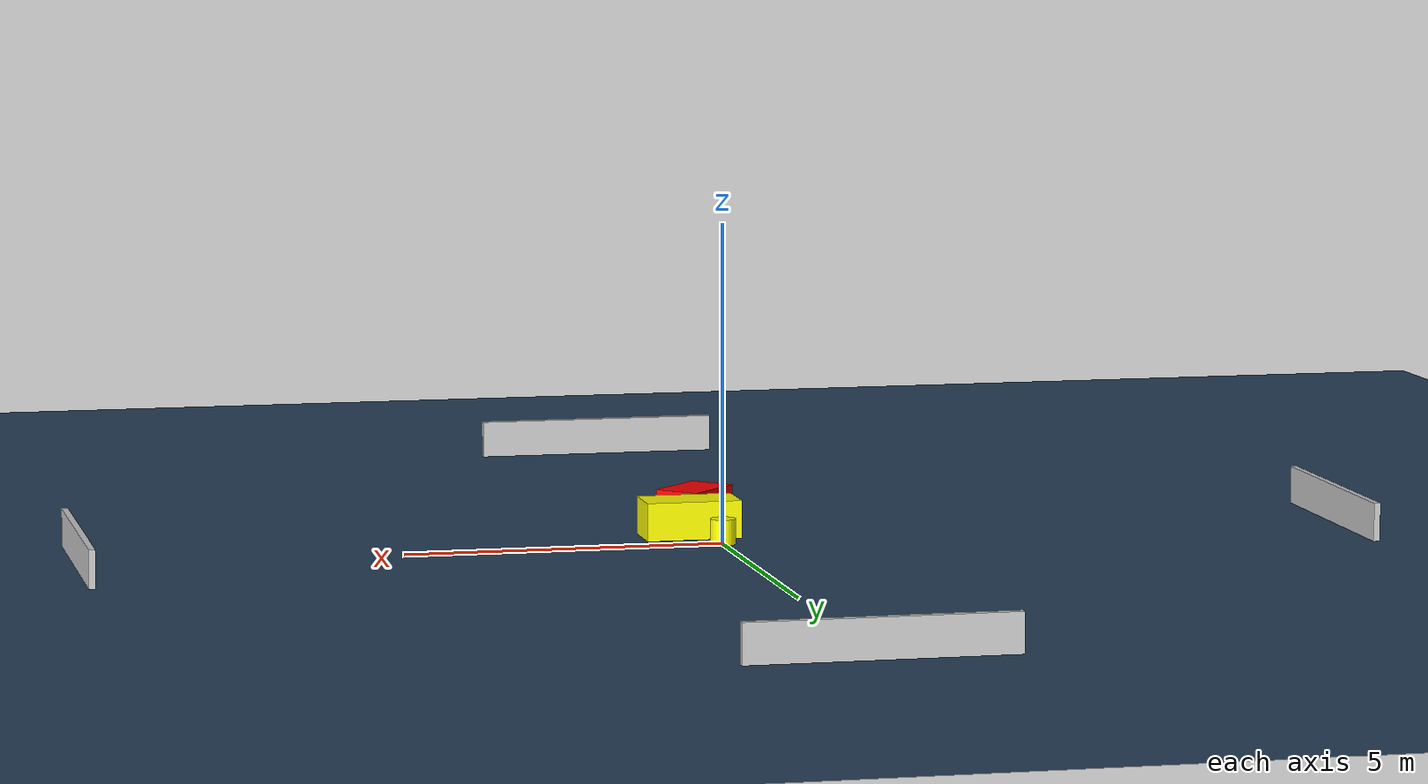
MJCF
<?xml version="1.0" ?>
<mujoco model="generated_environment">
  <option timestep="0.01" integrator="RK4" cone="elliptic"/>
  <default>
    <geom density="1"/>
  </default>
  <asset>
    <texture builtin="gradient" height="3072" name="skybox" rgb1="0.3 0.5 0.7" rgb2="0 0 0" type="skybox" width="512"/>
    <texture builtin="checker" height="300" name="groundplane" rgb1="0.2 0.3 0.4" rgb2="0.1 0.2 0.3" type="2d" width="300"/>
    <material name="groundplane" reflectance="0.2" texrepeat="5 5" texture="groundplane"/>
  </asset>
  <worldbody>
    <light dir="0 0 -1" directional="true" pos="0 0 1.5"/>
    <geom condim="3" friction="0.5 0.005 0.001" material="groundplane" name="floor" pos="0 0 0" size="0 0 0.05" type="plane"/>
    <body name="walls">
      <geom name="wall_1" condim="4" pos="-10.0 0.0 0.3" rgba="0.800000011920929 0.800000011920929 0.800000011920929 1.0" size="0.05 2.0 0.3" type="box"/>
      <geom name="wall_2" condim="4" pos="10.0 0.0 0.3" rgba="0.800000011920929 0.800000011920929 0.800000011920929 1.0" size="0.05 2.0 0.3" type="box"/>
      <geom name="wall_3" condim="4" pos="0.0 -10.0 0.3" rgba="0.800000011920929 0.800000011920929 0.800000011920929 1.0" size="2.0 0.05 0.3" type="box"/>
      <geom name="wall_4" condim="4" pos="0.0 10.0 0.3" rgba="0.800000011920929 0.800000011920929 0.800000011920929 1.0" size="2.0 0.05 0.3" type="box"/>
    </body>
    <body name="robot">
      <joint name="joint_x" type="slide" pos="0 0 0" axis="1 0 0"/>
      <joint name="joint_y" type="slide" pos="0 0 0" axis="0 1 0"/>
      <geom name="robot" type="cylinder" pos="0.0 0.0 0.2" size="0.2 0.2 0.0" mass="5.0" friction="1.0 0.005 0.0001" condim="4" rgba="1.0 1.0 0.0 1.0"/>
    </body>
    <body name="obstacle_1_movable">
      <geom name="obstacle_1_movable" condim="4" pos="0.34977007809149363 -0.8524535995323481 0.3" euler="0 0 89.93133196639907" friction="0.0 0.005 0.001" rgba="1.0 1.0 0.0 1.0" size="0.396277551283597 0.7528992417147444 0.3" type="box" mass="0.1"/>
      <joint type="free"/>
    </body>
    <body name="obstacle_2_static">
      <geom name="obstacle_2_static" condim="4" pos="0.018061057319686786 -1.969371921527541 0.3" euler="0 0 315.72716526552705" friction="0.0 0.005 0.001" rgba="1.0 0.0 0.0 1.0" size="0.37722579111871757 0.5400523502333028 0.3" type="box"/>
    </body>
  </worldbody>
  <actuator>
    <motor name="actuator_x" joint="joint_x" gear="1" ctrlrange="-1 1"/>
    <motor name="actuator_y" joint="joint_y" gear="1" ctrlrange="-1 1"/>
  </actuator>
</mujoco>
